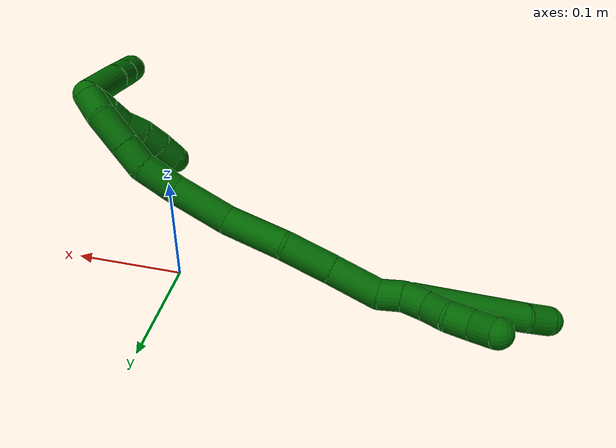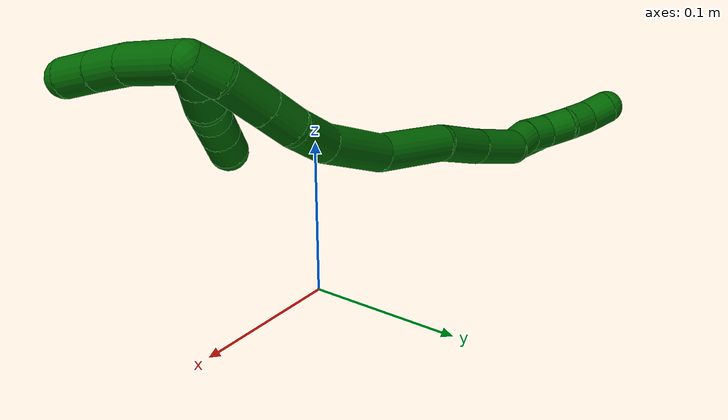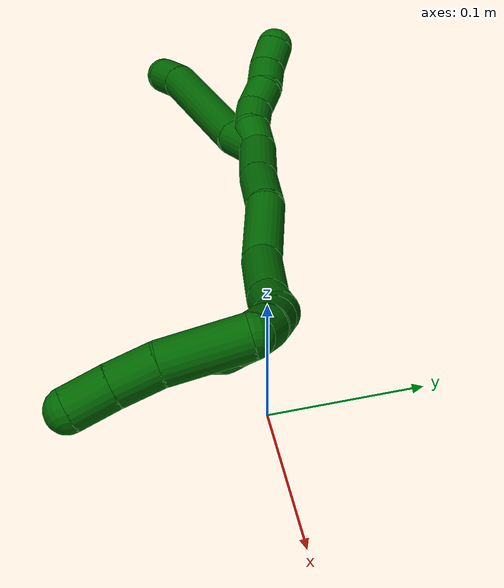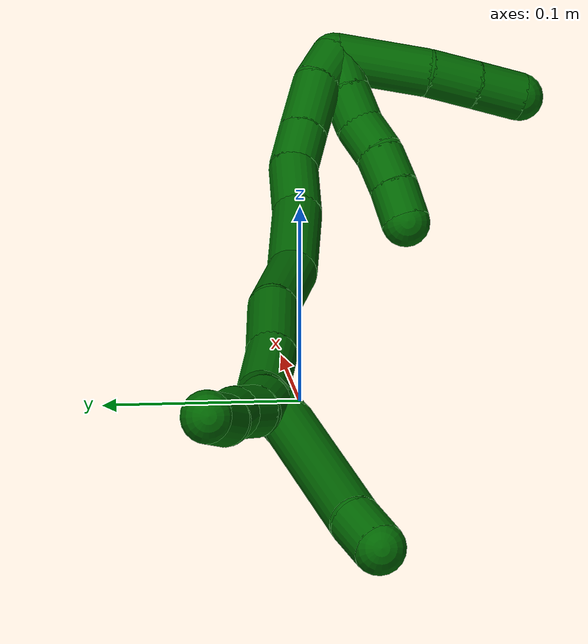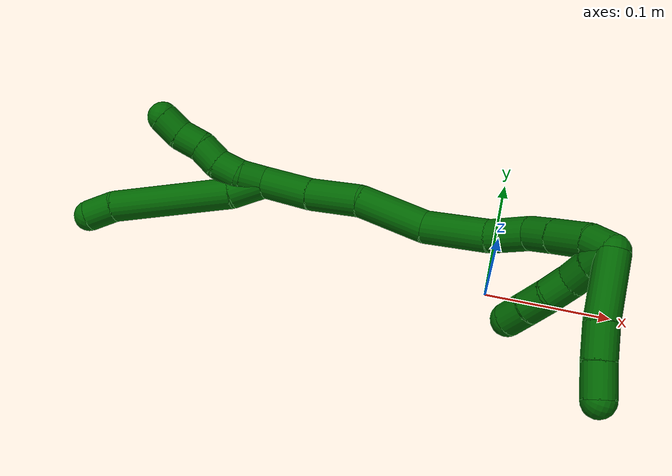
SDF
<sdf version="1.7">
 <world name="default">
  <model name="6">
   <static>0</static>
   <link name="6">
    <collision name="collision-cylinder-e_1_2_8">
     <pose>-0.002597 -0.00865 0.010975 0.667495 -0.183721 -0.063857</pose>
     <geometry><cylinder><radius>0.0125</radius><length>0.028427</length></cylinder></geometry>
     <surface>
      <friction><ode><mu>1.16</mu><mu2>1.16</mu2><slip1>0</slip1><slip2>0</slip2></ode></friction>
      <contact><ode><kp>1e+06</kp><kd>1</kd><max_vel>0</max_vel><min_depth>0.001</min_depth></ode></contact>
     </surface>
    </collision>
    <visual name="visual-cylinder-e_1_2_8">
     <pose>-0.002597 -0.00865 0.010975 0.667495 -0.183721 -0.063857</pose>
     <geometry><cylinder><radius>0.0125</radius><length>0.028427</length></cylinder></geometry>
     <material><ambient>0 0.392157 0.003922 1</ambient></material>
    </visual>
    <collision name="collision-cylinder-e_2_8_9">
     <pose>-0.017087 -0.038985 0.064564 0.470707 -0.243804 -0.058738</pose>
     <geometry><cylinder><radius>0.0125</radius><length>0.098542</length></cylinder></geometry>
     <surface>
      <friction><ode><mu>1.16</mu><mu2>1.16</mu2><slip1>0</slip1><slip2>0</slip2></ode></friction>
      <contact><ode><kp>1e+06</kp><kd>1</kd><max_vel>0</max_vel><min_depth>0.001</min_depth></ode></contact>
     </surface>
    </collision>
    <visual name="visual-cylinder-e_2_8_9">
     <pose>-0.017087 -0.038985 0.064564 0.470707 -0.243804 -0.058738</pose>
     <geometry><cylinder><radius>0.0125</radius><length>0.098542</length></cylinder></geometry>
     <material><ambient>0 0.392157 0.003922 1</ambient></material>
    </visual>
    <collision name="collision-cylinder-e_3_9_6">
     <pose>-0.031533 -0.067926 0.115748 0.702571 -0.223435 -0.082182</pose>
     <geometry><cylinder><radius>0.0125</radius><length>0.02303</length></cylinder></geometry>
     <surface>
      <friction><ode><mu>1.16</mu><mu2>1.16</mu2><slip1>0</slip1><slip2>0</slip2></ode></friction>
      <contact><ode><kp>1e+06</kp><kd>1</kd><max_vel>0</max_vel><min_depth>0.001</min_depth></ode></contact>
     </surface>
    </collision>
    <visual name="visual-cylinder-e_3_9_6">
     <pose>-0.031533 -0.067926 0.115748 0.702571 -0.223435 -0.082182</pose>
     <geometry><cylinder><radius>0.0125</radius><length>0.02303</length></cylinder></geometry>
     <material><ambient>0 0.392157 0.003922 1</ambient></material>
    </visual>
    <collision name="collision-cylinder-e_1_2_10">
     <pose>-0.000972 -0.000623 0.009933 0.062612 -0.097308 -0.00305</pose>
     <geometry><cylinder><radius>0.0125</radius><length>0.02</length></cylinder></geometry>
     <surface>
      <friction><ode><mu>1.16</mu><mu2>1.16</mu2><slip1>0</slip1><slip2>0</slip2></ode></friction>
      <contact><ode><kp>1e+06</kp><kd>1</kd><max_vel>0</max_vel><min_depth>0.001</min_depth></ode></contact>
     </surface>
    </collision>
    <visual name="visual-cylinder-e_1_2_10">
     <pose>-0.000972 -0.000623 0.009933 0.062612 -0.097308 -0.00305</pose>
     <geometry><cylinder><radius>0.0125</radius><length>0.02</length></cylinder></geometry>
     <material><ambient>0 0.392157 0.003922 1</ambient></material>
    </visual>
    <collision name="collision-cylinder-e_2_10_11">
     <pose>-0.005726 -0.000261 0.029071 -0.106609 -0.387998 0.020965</pose>
     <geometry><cylinder><radius>0.0125</radius><length>0.02</length></cylinder></geometry>
     <surface>
      <friction><ode><mu>1.16</mu><mu2>1.16</mu2><slip1>0</slip1><slip2>0</slip2></ode></friction>
      <contact><ode><kp>1e+06</kp><kd>1</kd><max_vel>0</max_vel><min_depth>0.001</min_depth></ode></contact>
     </surface>
    </collision>
    <visual name="visual-cylinder-e_2_10_11">
     <pose>-0.005726 -0.000261 0.029071 -0.106609 -0.387998 0.020965</pose>
     <geometry><cylinder><radius>0.0125</radius><length>0.02</length></cylinder></geometry>
     <material><ambient>0 0.392157 0.003922 1</ambient></material>
    </visual>
    <collision name="collision-cylinder-e_3_11_12">
     <pose>-0.012807 0.00493 0.046727 -0.461729 -0.335986 0.079685</pose>
     <geometry><cylinder><radius>0.0125</radius><length>0.02</length></cylinder></geometry>
     <surface>
      <friction><ode><mu>1.16</mu><mu2>1.16</mu2><slip1>0</slip1><slip2>0</slip2></ode></friction>
      <contact><ode><kp>1e+06</kp><kd>1</kd><max_vel>0</max_vel><min_depth>0.001</min_depth></ode></contact>
     </surface>
    </collision>
    <visual name="visual-cylinder-e_3_11_12">
     <pose>-0.012807 0.00493 0.046727 -0.461729 -0.335986 0.079685</pose>
     <geometry><cylinder><radius>0.0125</radius><length>0.02</length></cylinder></geometry>
     <material><ambient>0 0.392157 0.003922 1</ambient></material>
    </visual>
    <collision name="collision-cylinder-e_4_12_13">
     <pose>-0.019199 0.010578 0.064578 -0.152251 -0.31473 0.024204</pose>
     <geometry><cylinder><radius>0.0125</radius><length>0.02</length></cylinder></geometry>
     <surface>
      <friction><ode><mu>1.16</mu><mu2>1.16</mu2><slip1>0</slip1><slip2>0</slip2></ode></friction>
      <contact><ode><kp>1e+06</kp><kd>1</kd><max_vel>0</max_vel><min_depth>0.001</min_depth></ode></contact>
     </surface>
    </collision>
    <visual name="visual-cylinder-e_4_12_13">
     <pose>-0.019199 0.010578 0.064578 -0.152251 -0.31473 0.024204</pose>
     <geometry><cylinder><radius>0.0125</radius><length>0.02</length></cylinder></geometry>
     <material><ambient>0 0.392157 0.003922 1</ambient></material>
    </visual>
    <collision name="collision-cylinder-e_5_13_5">
     <pose>-0.024305 0.016265 0.082805 -0.448103 -0.202394 0.046271</pose>
     <geometry><cylinder><radius>0.0125</radius><length>0.02</length></cylinder></geometry>
     <surface>
      <friction><ode><mu>1.16</mu><mu2>1.16</mu2><slip1>0</slip1><slip2>0</slip2></ode></friction>
      <contact><ode><kp>1e+06</kp><kd>1</kd><max_vel>0</max_vel><min_depth>0.001</min_depth></ode></contact>
     </surface>
    </collision>
    <visual name="visual-cylinder-e_5_13_5">
     <pose>-0.024305 0.016265 0.082805 -0.448103 -0.202394 0.046271</pose>
     <geometry><cylinder><radius>0.0125</radius><length>0.02</length></cylinder></geometry>
     <material><ambient>0 0.392157 0.003922 1</ambient></material>
    </visual>
    <collision name="collision-cylinder-e_1_2_14">
     <pose>0.010527 0.00249 -0.018085 -3.00476 0.52306 -2.64034</pose>
     <geometry><cylinder><radius>0.0125</radius><length>0.042146</length></cylinder></geometry>
     <surface>
      <friction><ode><mu>1.16</mu><mu2>1.16</mu2><slip1>0</slip1><slip2>0</slip2></ode></friction>
      <contact><ode><kp>1e+06</kp><kd>1</kd><max_vel>0</max_vel><min_depth>0.001</min_depth></ode></contact>
     </surface>
    </collision>
    <visual name="visual-cylinder-e_1_2_14">
     <pose>0.010527 0.00249 -0.018085 -3.00476 0.52306 -2.64034</pose>
     <geometry><cylinder><radius>0.0125</radius><length>0.042146</length></cylinder></geometry>
     <material><ambient>0 0.392157 0.003922 1</ambient></material>
    </visual>
    <collision name="collision-cylinder-e_2_14_15">
     <pose>0.031649 0.009894 -0.053894 -2.87117 0.522623 -2.20042</pose>
     <geometry><cylinder><radius>0.0125</radius><length>0.042453</length></cylinder></geometry>
     <surface>
      <friction><ode><mu>1.16</mu><mu2>1.16</mu2><slip1>0</slip1><slip2>0</slip2></ode></friction>
      <contact><ode><kp>1e+06</kp><kd>1</kd><max_vel>0</max_vel><min_depth>0.001</min_depth></ode></contact>
     </surface>
    </collision>
    <visual name="visual-cylinder-e_2_14_15">
     <pose>0.031649 0.009894 -0.053894 -2.87117 0.522623 -2.20042</pose>
     <geometry><cylinder><radius>0.0125</radius><length>0.042453</length></cylinder></geometry>
     <material><ambient>0 0.392157 0.003922 1</ambient></material>
    </visual>
    <collision name="collision-cylinder-e_3_15_16">
     <pose>0.053674 0.014518 -0.096333 3.12991 0.433177 3.0885</pose>
     <geometry><cylinder><radius>0.0125</radius><length>0.054462</length></cylinder></geometry>
     <surface>
      <friction><ode><mu>1.16</mu><mu2>1.16</mu2><slip1>0</slip1><slip2>0</slip2></ode></friction>
      <contact><ode><kp>1e+06</kp><kd>1</kd><max_vel>0</max_vel><min_depth>0.001</min_depth></ode></contact>
     </surface>
    </collision>
    <visual name="visual-cylinder-e_3_15_16">
     <pose>0.053674 0.014518 -0.096333 3.12991 0.433177 3.0885</pose>
     <geometry><cylinder><radius>0.0125</radius><length>0.054462</length></cylinder></geometry>
     <material><ambient>0 0.392157 0.003922 1</ambient></material>
    </visual>
    <collision name="collision-cylinder-e_4_16_17">
     <pose>0.079541 0.020247 -0.141838 -2.85987 0.588227 -2.26591</pose>
     <geometry><cylinder><radius>0.0125</radius><length>0.052035</length></cylinder></geometry>
     <surface>
      <friction><ode><mu>1.16</mu><mu2>1.16</mu2><slip1>0</slip1><slip2>0</slip2></ode></friction>
      <contact><ode><kp>1e+06</kp><kd>1</kd><max_vel>0</max_vel><min_depth>0.001</min_depth></ode></contact>
     </surface>
    </collision>
    <visual name="visual-cylinder-e_4_16_17">
     <pose>0.079541 0.020247 -0.141838 -2.85987 0.588227 -2.26591</pose>
     <geometry><cylinder><radius>0.0125</radius><length>0.052035</length></cylinder></geometry>
     <material><ambient>0 0.392157 0.003922 1</ambient></material>
    </visual>
    <collision name="collision-cylinder-e_5_17_18">
     <pose>0.103984 0.032949 -0.173728 -2.59946 0.657635 -1.77456</pose>
     <geometry><cylinder><radius>0.0125</radius><length>0.03274</length></cylinder></geometry>
     <surface>
      <friction><ode><mu>1.16</mu><mu2>1.16</mu2><slip1>0</slip1><slip2>0</slip2></ode></friction>
      <contact><ode><kp>1e+06</kp><kd>1</kd><max_vel>0</max_vel><min_depth>0.001</min_depth></ode></contact>
     </surface>
    </collision>
    <visual name="visual-cylinder-e_5_17_18">
     <pose>0.103984 0.032949 -0.173728 -2.59946 0.657635 -1.77456</pose>
     <geometry><cylinder><radius>0.0125</radius><length>0.03274</length></cylinder></geometry>
     <material><ambient>0 0.392157 0.003922 1</ambient></material>
    </visual>
    <collision name="collision-cylinder-e_6_18_19">
     <pose>0.123327 0.042348 -0.190884 -2.72035 0.952719 -2.35599</pose>
     <geometry><cylinder><radius>0.0125</radius><length>0.022912</length></cylinder></geometry>
     <surface>
      <friction><ode><mu>1.16</mu><mu2>1.16</mu2><slip1>0</slip1><slip2>0</slip2></ode></friction>
      <contact><ode><kp>1e+06</kp><kd>1</kd><max_vel>0</max_vel><min_depth>0.001</min_depth></ode></contact>
     </surface>
    </collision>
    <visual name="visual-cylinder-e_6_18_19">
     <pose>0.123327 0.042348 -0.190884 -2.72035 0.952719 -2.35599</pose>
     <geometry><cylinder><radius>0.0125</radius><length>0.022912</length></cylinder></geometry>
     <material><ambient>0 0.392157 0.003922 1</ambient></material>
    </visual>
    <collision name="collision-cylinder-e_7_19_20">
     <pose>0.145774 0.048647 -0.205472 -2.74379 0.956222 -2.39967</pose>
     <geometry><cylinder><radius>0.0125</radius><length>0.032095</length></cylinder></geometry>
     <surface>
      <friction><ode><mu>1.16</mu><mu2>1.16</mu2><slip1>0</slip1><slip2>0</slip2></ode></friction>
      <contact><ode><kp>1e+06</kp><kd>1</kd><max_vel>0</max_vel><min_depth>0.001</min_depth></ode></contact>
     </surface>
    </collision>
    <visual name="visual-cylinder-e_7_19_20">
     <pose>0.145774 0.048647 -0.205472 -2.74379 0.956222 -2.39967</pose>
     <geometry><cylinder><radius>0.0125</radius><length>0.032095</length></cylinder></geometry>
     <material><ambient>0 0.392157 0.003922 1</ambient></material>
    </visual>
    <collision name="collision-cylinder-e_8_20_1">
     <pose>0.167821 0.052106 -0.219664 3.11929 1.00594 3.10105</pose>
     <geometry><cylinder><radius>0.0125</radius><length>0.021158</length></cylinder></geometry>
     <surface>
      <friction><ode><mu>1.16</mu><mu2>1.16</mu2><slip1>0</slip1><slip2>0</slip2></ode></friction>
      <contact><ode><kp>1e+06</kp><kd>1</kd><max_vel>0</max_vel><min_depth>0.001</min_depth></ode></contact>
     </surface>
    </collision>
    <visual name="visual-cylinder-e_8_20_1">
     <pose>0.167821 0.052106 -0.219664 3.11929 1.00594 3.10105</pose>
     <geometry><cylinder><radius>0.0125</radius><length>0.021158</length></cylinder></geometry>
     <material><ambient>0 0.392157 0.003922 1</ambient></material>
    </visual>
    <collision name="collision-cylinder-e_1_1_21">
     <pose>0.170616 0.04483 -0.221983 1.1334 -0.661226 -0.430032</pose>
     <geometry><cylinder><radius>0.0125</radius><length>0.02</length></cylinder></geometry>
     <surface>
      <friction><ode><mu>1.16</mu><mu2>1.16</mu2><slip1>0</slip1><slip2>0</slip2></ode></friction>
      <contact><ode><kp>1e+06</kp><kd>1</kd><max_vel>0</max_vel><min_depth>0.001</min_depth></ode></contact>
     </surface>
    </collision>
    <visual name="visual-cylinder-e_1_1_21">
     <pose>0.170616 0.04483 -0.221983 1.1334 -0.661226 -0.430032</pose>
     <geometry><cylinder><radius>0.0125</radius><length>0.02</length></cylinder></geometry>
     <material><ambient>0 0.392157 0.003922 1</ambient></material>
    </visual>
    <collision name="collision-cylinder-e_2_21_22">
     <pose>0.15882 0.029897 -0.215913 1.23382 -0.601038 -0.432721</pose>
     <geometry><cylinder><radius>0.0125</radius><length>0.02</length></cylinder></geometry>
     <surface>
      <friction><ode><mu>1.16</mu><mu2>1.16</mu2><slip1>0</slip1><slip2>0</slip2></ode></friction>
      <contact><ode><kp>1e+06</kp><kd>1</kd><max_vel>0</max_vel><min_depth>0.001</min_depth></ode></contact>
     </surface>
    </collision>
    <visual name="visual-cylinder-e_2_21_22">
     <pose>0.15882 0.029897 -0.215913 1.23382 -0.601038 -0.432721</pose>
     <geometry><cylinder><radius>0.0125</radius><length>0.02</length></cylinder></geometry>
     <material><ambient>0 0.392157 0.003922 1</ambient></material>
    </visual>
    <collision name="collision-cylinder-e_3_22_23">
     <pose>0.149512 0.014085 -0.208474 1.04003 -0.373994 -0.215832</pose>
     <geometry><cylinder><radius>0.0125</radius><length>0.02</length></cylinder></geometry>
     <surface>
      <friction><ode><mu>1.16</mu><mu2>1.16</mu2><slip1>0</slip1><slip2>0</slip2></ode></friction>
      <contact><ode><kp>1e+06</kp><kd>1</kd><max_vel>0</max_vel><min_depth>0.001</min_depth></ode></contact>
     </surface>
    </collision>
    <visual name="visual-cylinder-e_3_22_23">
     <pose>0.149512 0.014085 -0.208474 1.04003 -0.373994 -0.215832</pose>
     <geometry><cylinder><radius>0.0125</radius><length>0.02</length></cylinder></geometry>
     <material><ambient>0 0.392157 0.003922 1</ambient></material>
    </visual>
    <collision name="collision-cylinder-e_4_23_24">
     <pose>0.140455 -0.001356 -0.19978 1.07791 -0.570858 -0.347423</pose>
     <geometry><cylinder><radius>0.0125</radius><length>0.02</length></cylinder></geometry>
     <surface>
      <friction><ode><mu>1.16</mu><mu2>1.16</mu2><slip1>0</slip1><slip2>0</slip2></ode></friction>
      <contact><ode><kp>1e+06</kp><kd>1</kd><max_vel>0</max_vel><min_depth>0.001</min_depth></ode></contact>
     </surface>
    </collision>
    <visual name="visual-cylinder-e_4_23_24">
     <pose>0.140455 -0.001356 -0.19978 1.07791 -0.570858 -0.347423</pose>
     <geometry><cylinder><radius>0.0125</radius><length>0.02</length></cylinder></geometry>
     <material><ambient>0 0.392157 0.003922 1</ambient></material>
    </visual>
    <collision name="collision-cylinder-e_5_24_4">
     <pose>0.129048 -0.015898 -0.192175 1.1006 -0.643904 -0.403714</pose>
     <geometry><cylinder><radius>0.0125</radius><length>0.02</length></cylinder></geometry>
     <surface>
      <friction><ode><mu>1.16</mu><mu2>1.16</mu2><slip1>0</slip1><slip2>0</slip2></ode></friction>
      <contact><ode><kp>1e+06</kp><kd>1</kd><max_vel>0</max_vel><min_depth>0.001</min_depth></ode></contact>
     </surface>
    </collision>
    <visual name="visual-cylinder-e_5_24_4">
     <pose>0.129048 -0.015898 -0.192175 1.1006 -0.643904 -0.403714</pose>
     <geometry><cylinder><radius>0.0125</radius><length>0.02</length></cylinder></geometry>
     <material><ambient>0 0.392157 0.003922 1</ambient></material>
    </visual>
    <collision name="collision-cylinder-e_1_1_25">
     <pose>0.186814 0.029774 -0.226788 1.63654 0.42446 0.452382</pose>
     <geometry><cylinder><radius>0.0125</radius><length>0.04884</length></cylinder></geometry>
     <surface>
      <friction><ode><mu>1.16</mu><mu2>1.16</mu2><slip1>0</slip1><slip2>0</slip2></ode></friction>
      <contact><ode><kp>1e+06</kp><kd>1</kd><max_vel>0</max_vel><min_depth>0.001</min_depth></ode></contact>
     </surface>
    </collision>
    <visual name="visual-cylinder-e_1_1_25">
     <pose>0.186814 0.029774 -0.226788 1.63654 0.42446 0.452382</pose>
     <geometry><cylinder><radius>0.0125</radius><length>0.04884</length></cylinder></geometry>
     <material><ambient>0 0.392157 0.003922 1</ambient></material>
    </visual>
    <collision name="collision-cylinder-e_2_25_26">
     <pose>0.201308 -0.004354 -0.230644 1.76895 0.349837 0.424958</pose>
     <geometry><cylinder><radius>0.0125</radius><length>0.025891</length></cylinder></geometry>
     <surface>
      <friction><ode><mu>1.16</mu><mu2>1.16</mu2><slip1>0</slip1><slip2>0</slip2></ode></friction>
      <contact><ode><kp>1e+06</kp><kd>1</kd><max_vel>0</max_vel><min_depth>0.001</min_depth></ode></contact>
     </surface>
    </collision>
    <visual name="visual-cylinder-e_2_25_26">
     <pose>0.201308 -0.004354 -0.230644 1.76895 0.349837 0.424958</pose>
     <geometry><cylinder><radius>0.0125</radius><length>0.025891</length></cylinder></geometry>
     <material><ambient>0 0.392157 0.003922 1</ambient></material>
    </visual>
    <collision name="collision-cylinder-e_3_26_3">
     <pose>0.210019 -0.027763 -0.236111 1.83225 0.345131 0.446565</pose>
     <geometry><cylinder><radius>0.0125</radius><length>0.025268</length></cylinder></geometry>
     <surface>
      <friction><ode><mu>1.16</mu><mu2>1.16</mu2><slip1>0</slip1><slip2>0</slip2></ode></friction>
      <contact><ode><kp>1e+06</kp><kd>1</kd><max_vel>0</max_vel><min_depth>0.001</min_depth></ode></contact>
     </surface>
    </collision>
    <visual name="visual-cylinder-e_3_26_3">
     <pose>0.210019 -0.027763 -0.236111 1.83225 0.345131 0.446565</pose>
     <geometry><cylinder><radius>0.0125</radius><length>0.025268</length></cylinder></geometry>
     <material><ambient>0 0.392157 0.003922 1</ambient></material>
    </visual>
    <collision name="collision-sphere-3">
     <pose>0.214293 -0.039248 -0.239184 0 -0 0</pose>
     <geometry><sphere><radius>0.0125</radius></sphere></geometry>
     <surface>
      <friction><ode><mu>1.16</mu><mu2>1.16</mu2><slip1>0</slip1><slip2>0</slip2></ode></friction>
      <contact><ode><kp>1e+06</kp><kd>1</kd><max_vel>0</max_vel><min_depth>0.001</min_depth></ode></contact>
     </surface>
    </collision>
    <visual name="visual-sphere-3">
     <pose>0.214293 -0.039248 -0.239184 0 -0 0</pose>
     <geometry><sphere><radius>0.0125</radius></sphere></geometry>
     <material><ambient>0 0.392157 0.003922 1</ambient></material>
    </visual>
    <collision name="collision-sphere-26">
     <pose>0.205745 -0.016278 -0.233038 0 -0 0</pose>
     <geometry><sphere><radius>0.0125</radius></sphere></geometry>
     <surface>
      <friction><ode><mu>1.16</mu><mu2>1.16</mu2><slip1>0</slip1><slip2>0</slip2></ode></friction>
      <contact><ode><kp>1e+06</kp><kd>1</kd><max_vel>0</max_vel><min_depth>0.001</min_depth></ode></contact>
     </surface>
    </collision>
    <visual name="visual-sphere-26">
     <pose>0.205745 -0.016278 -0.233038 0 -0 0</pose>
     <geometry><sphere><radius>0.0125</radius></sphere></geometry>
     <material><ambient>0 0.392157 0.003922 1</ambient></material>
    </visual>
    <collision name="collision-sphere-25">
     <pose>0.19687 0.007569 -0.22825 0 -0 0</pose>
     <geometry><sphere><radius>0.0125</radius></sphere></geometry>
     <surface>
      <friction><ode><mu>1.16</mu><mu2>1.16</mu2><slip1>0</slip1><slip2>0</slip2></ode></friction>
      <contact><ode><kp>1e+06</kp><kd>1</kd><max_vel>0</max_vel><min_depth>0.001</min_depth></ode></contact>
     </surface>
    </collision>
    <visual name="visual-sphere-25">
     <pose>0.19687 0.007569 -0.22825 0 -0 0</pose>
     <geometry><sphere><radius>0.0125</radius></sphere></geometry>
     <material><ambient>0 0.392157 0.003922 1</ambient></material>
    </visual>
    <collision name="collision-sphere-4">
     <pose>0.123045 -0.023028 -0.188552 0 -0 0</pose>
     <geometry><sphere><radius>0.0125</radius></sphere></geometry>
     <surface>
      <friction><ode><mu>1.16</mu><mu2>1.16</mu2><slip1>0</slip1><slip2>0</slip2></ode></friction>
      <contact><ode><kp>1e+06</kp><kd>1</kd><max_vel>0</max_vel><min_depth>0.001</min_depth></ode></contact>
     </surface>
    </collision>
    <visual name="visual-sphere-4">
     <pose>0.123045 -0.023028 -0.188552 0 -0 0</pose>
     <geometry><sphere><radius>0.0125</radius></sphere></geometry>
     <material><ambient>0 0.392157 0.003922 1</ambient></material>
    </visual>
    <collision name="collision-sphere-24">
     <pose>0.135051 -0.008768 -0.195799 0 -0 0</pose>
     <geometry><sphere><radius>0.0125</radius></sphere></geometry>
     <surface>
      <friction><ode><mu>1.16</mu><mu2>1.16</mu2><slip1>0</slip1><slip2>0</slip2></ode></friction>
      <contact><ode><kp>1e+06</kp><kd>1</kd><max_vel>0</max_vel><min_depth>0.001</min_depth></ode></contact>
     </surface>
    </collision>
    <visual name="visual-sphere-24">
     <pose>0.135051 -0.008768 -0.195799 0 -0 0</pose>
     <geometry><sphere><radius>0.0125</radius></sphere></geometry>
     <material><ambient>0 0.392157 0.003922 1</ambient></material>
    </visual>
    <collision name="collision-sphere-23">
     <pose>0.145858 0.006057 -0.203762 0 -0 0</pose>
     <geometry><sphere><radius>0.0125</radius></sphere></geometry>
     <surface>
      <friction><ode><mu>1.16</mu><mu2>1.16</mu2><slip1>0</slip1><slip2>0</slip2></ode></friction>
      <contact><ode><kp>1e+06</kp><kd>1</kd><max_vel>0</max_vel><min_depth>0.001</min_depth></ode></contact>
     </surface>
    </collision>
    <visual name="visual-sphere-23">
     <pose>0.145858 0.006057 -0.203762 0 -0 0</pose>
     <geometry><sphere><radius>0.0125</radius></sphere></geometry>
     <material><ambient>0 0.392157 0.003922 1</ambient></material>
    </visual>
    <collision name="collision-sphere-22">
     <pose>0.153165 0.022113 -0.213186 0 -0 0</pose>
     <geometry><sphere><radius>0.0125</radius></sphere></geometry>
     <surface>
      <friction><ode><mu>1.16</mu><mu2>1.16</mu2><slip1>0</slip1><slip2>0</slip2></ode></friction>
      <contact><ode><kp>1e+06</kp><kd>1</kd><max_vel>0</max_vel><min_depth>0.001</min_depth></ode></contact>
     </surface>
    </collision>
    <visual name="visual-sphere-22">
     <pose>0.153165 0.022113 -0.213186 0 -0 0</pose>
     <geometry><sphere><radius>0.0125</radius></sphere></geometry>
     <material><ambient>0 0.392157 0.003922 1</ambient></material>
    </visual>
    <collision name="collision-sphere-21">
     <pose>0.164475 0.037681 -0.21864 0 -0 0</pose>
     <geometry><sphere><radius>0.0125</radius></sphere></geometry>
     <surface>
      <friction><ode><mu>1.16</mu><mu2>1.16</mu2><slip1>0</slip1><slip2>0</slip2></ode></friction>
      <contact><ode><kp>1e+06</kp><kd>1</kd><max_vel>0</max_vel><min_depth>0.001</min_depth></ode></contact>
     </surface>
    </collision>
    <visual name="visual-sphere-21">
     <pose>0.164475 0.037681 -0.21864 0 -0 0</pose>
     <geometry><sphere><radius>0.0125</radius></sphere></geometry>
     <material><ambient>0 0.392157 0.003922 1</ambient></material>
    </visual>
    <collision name="collision-sphere-1">
     <pose>0.176757 0.051979 -0.225326 0 -0 0</pose>
     <geometry><sphere><radius>0.0125</radius></sphere></geometry>
     <surface>
      <friction><ode><mu>1.16</mu><mu2>1.16</mu2><slip1>0</slip1><slip2>0</slip2></ode></friction>
      <contact><ode><kp>1e+06</kp><kd>1</kd><max_vel>0</max_vel><min_depth>0.001</min_depth></ode></contact>
     </surface>
    </collision>
    <visual name="visual-sphere-1">
     <pose>0.176757 0.051979 -0.225326 0 -0 0</pose>
     <geometry><sphere><radius>0.0125</radius></sphere></geometry>
     <material><ambient>0 0.392157 0.003922 1</ambient></material>
    </visual>
    <collision name="collision-sphere-11">
     <pose>-0.00951 0.000724 0.038275 0 -0 0</pose>
     <geometry><sphere><radius>0.0125</radius></sphere></geometry>
     <surface>
      <friction><ode><mu>1.16</mu><mu2>1.16</mu2><slip1>0</slip1><slip2>0</slip2></ode></friction>
      <contact><ode><kp>1e+06</kp><kd>1</kd><max_vel>0</max_vel><min_depth>0.001</min_depth></ode></contact>
     </surface>
    </collision>
    <visual name="visual-sphere-11">
     <pose>-0.00951 0.000724 0.038275 0 -0 0</pose>
     <geometry><sphere><radius>0.0125</radius></sphere></geometry>
     <material><ambient>0 0.392157 0.003922 1</ambient></material>
    </visual>
    <collision name="collision-sphere-10">
     <pose>-0.001943 -0.001246 0.019866 0 -0 0</pose>
     <geometry><sphere><radius>0.0125</radius></sphere></geometry>
     <surface>
      <friction><ode><mu>1.16</mu><mu2>1.16</mu2><slip1>0</slip1><slip2>0</slip2></ode></friction>
      <contact><ode><kp>1e+06</kp><kd>1</kd><max_vel>0</max_vel><min_depth>0.001</min_depth></ode></contact>
     </surface>
    </collision>
    <visual name="visual-sphere-10">
     <pose>-0.001943 -0.001246 0.019866 0 -0 0</pose>
     <geometry><sphere><radius>0.0125</radius></sphere></geometry>
     <material><ambient>0 0.392157 0.003922 1</ambient></material>
    </visual>
    <collision name="collision-sphere-6">
     <pose>-0.034084 -0.075182 0.124318 0 -0 0</pose>
     <geometry><sphere><radius>0.0125</radius></sphere></geometry>
     <surface>
      <friction><ode><mu>1.16</mu><mu2>1.16</mu2><slip1>0</slip1><slip2>0</slip2></ode></friction>
      <contact><ode><kp>1e+06</kp><kd>1</kd><max_vel>0</max_vel><min_depth>0.001</min_depth></ode></contact>
     </surface>
    </collision>
    <visual name="visual-sphere-6">
     <pose>-0.034084 -0.075182 0.124318 0 -0 0</pose>
     <geometry><sphere><radius>0.0125</radius></sphere></geometry>
     <material><ambient>0 0.392157 0.003922 1</ambient></material>
    </visual>
    <collision name="collision-sphere-9">
     <pose>-0.028981 -0.06067 0.107179 0 -0 0</pose>
     <geometry><sphere><radius>0.0125</radius></sphere></geometry>
     <surface>
      <friction><ode><mu>1.16</mu><mu2>1.16</mu2><slip1>0</slip1><slip2>0</slip2></ode></friction>
      <contact><ode><kp>1e+06</kp><kd>1</kd><max_vel>0</max_vel><min_depth>0.001</min_depth></ode></contact>
     </surface>
    </collision>
    <visual name="visual-sphere-9">
     <pose>-0.028981 -0.06067 0.107179 0 -0 0</pose>
     <geometry><sphere><radius>0.0125</radius></sphere></geometry>
     <material><ambient>0 0.392157 0.003922 1</ambient></material>
    </visual>
    <collision name="collision-sphere-2">
     <geometry><sphere><radius>0.0125</radius></sphere></geometry>
     <surface>
      <friction><ode><mu>1.16</mu><mu2>1.16</mu2><slip1>0</slip1><slip2>0</slip2></ode></friction>
      <contact><ode><kp>1e+06</kp><kd>1</kd><max_vel>0</max_vel><min_depth>0.001</min_depth></ode></contact>
     </surface>
    </collision>
    <visual name="visual-sphere-2">
     <geometry><sphere><radius>0.0125</radius></sphere></geometry>
     <material><ambient>0 0.392157 0.003922 1</ambient></material>
    </visual>
    <collision name="collision-sphere-19">
     <pose>0.132663 0.045063 -0.196942 0 -0 0</pose>
     <geometry><sphere><radius>0.0125</radius></sphere></geometry>
     <surface>
      <friction><ode><mu>1.16</mu><mu2>1.16</mu2><slip1>0</slip1><slip2>0</slip2></ode></friction>
      <contact><ode><kp>1e+06</kp><kd>1</kd><max_vel>0</max_vel><min_depth>0.001</min_depth></ode></contact>
     </surface>
    </collision>
    <visual name="visual-sphere-19">
     <pose>0.132663 0.045063 -0.196942 0 -0 0</pose>
     <geometry><sphere><radius>0.0125</radius></sphere></geometry>
     <material><ambient>0 0.392157 0.003922 1</ambient></material>
    </visual>
    <collision name="collision-sphere-8">
     <pose>-0.005193 -0.017301 0.02195 0 -0 0</pose>
     <geometry><sphere><radius>0.0125</radius></sphere></geometry>
     <surface>
      <friction><ode><mu>1.16</mu><mu2>1.16</mu2><slip1>0</slip1><slip2>0</slip2></ode></friction>
      <contact><ode><kp>1e+06</kp><kd>1</kd><max_vel>0</max_vel><min_depth>0.001</min_depth></ode></contact>
     </surface>
    </collision>
    <visual name="visual-sphere-8">
     <pose>-0.005193 -0.017301 0.02195 0 -0 0</pose>
     <geometry><sphere><radius>0.0125</radius></sphere></geometry>
     <material><ambient>0 0.392157 0.003922 1</ambient></material>
    </visual>
    <collision name="collision-sphere-12">
     <pose>-0.016104 0.009136 0.055179 0 -0 0</pose>
     <geometry><sphere><radius>0.0125</radius></sphere></geometry>
     <surface>
      <friction><ode><mu>1.16</mu><mu2>1.16</mu2><slip1>0</slip1><slip2>0</slip2></ode></friction>
      <contact><ode><kp>1e+06</kp><kd>1</kd><max_vel>0</max_vel><min_depth>0.001</min_depth></ode></contact>
     </surface>
    </collision>
    <visual name="visual-sphere-12">
     <pose>-0.016104 0.009136 0.055179 0 -0 0</pose>
     <geometry><sphere><radius>0.0125</radius></sphere></geometry>
     <material><ambient>0 0.392157 0.003922 1</ambient></material>
    </visual>
    <collision name="collision-sphere-13">
     <pose>-0.022295 0.01202 0.073977 0 -0 0</pose>
     <geometry><sphere><radius>0.0125</radius></sphere></geometry>
     <surface>
      <friction><ode><mu>1.16</mu><mu2>1.16</mu2><slip1>0</slip1><slip2>0</slip2></ode></friction>
      <contact><ode><kp>1e+06</kp><kd>1</kd><max_vel>0</max_vel><min_depth>0.001</min_depth></ode></contact>
     </surface>
    </collision>
    <visual name="visual-sphere-13">
     <pose>-0.022295 0.01202 0.073977 0 -0 0</pose>
     <geometry><sphere><radius>0.0125</radius></sphere></geometry>
     <material><ambient>0 0.392157 0.003922 1</ambient></material>
    </visual>
    <collision name="collision-sphere-5">
     <pose>-0.026315 0.020509 0.091634 0 -0 0</pose>
     <geometry><sphere><radius>0.0125</radius></sphere></geometry>
     <surface>
      <friction><ode><mu>1.16</mu><mu2>1.16</mu2><slip1>0</slip1><slip2>0</slip2></ode></friction>
      <contact><ode><kp>1e+06</kp><kd>1</kd><max_vel>0</max_vel><min_depth>0.001</min_depth></ode></contact>
     </surface>
    </collision>
    <visual name="visual-sphere-5">
     <pose>-0.026315 0.020509 0.091634 0 -0 0</pose>
     <geometry><sphere><radius>0.0125</radius></sphere></geometry>
     <material><ambient>0 0.392157 0.003922 1</ambient></material>
    </visual>
    <collision name="collision-sphere-14">
     <pose>0.021053 0.00498 -0.03617 0 -0 0</pose>
     <geometry><sphere><radius>0.0125</radius></sphere></geometry>
     <surface>
      <friction><ode><mu>1.16</mu><mu2>1.16</mu2><slip1>0</slip1><slip2>0</slip2></ode></friction>
      <contact><ode><kp>1e+06</kp><kd>1</kd><max_vel>0</max_vel><min_depth>0.001</min_depth></ode></contact>
     </surface>
    </collision>
    <visual name="visual-sphere-14">
     <pose>0.021053 0.00498 -0.03617 0 -0 0</pose>
     <geometry><sphere><radius>0.0125</radius></sphere></geometry>
     <material><ambient>0 0.392157 0.003922 1</ambient></material>
    </visual>
    <collision name="collision-sphere-15">
     <pose>0.042244 0.014807 -0.071619 0 -0 0</pose>
     <geometry><sphere><radius>0.0125</radius></sphere></geometry>
     <surface>
      <friction><ode><mu>1.16</mu><mu2>1.16</mu2><slip1>0</slip1><slip2>0</slip2></ode></friction>
      <contact><ode><kp>1e+06</kp><kd>1</kd><max_vel>0</max_vel><min_depth>0.001</min_depth></ode></contact>
     </surface>
    </collision>
    <visual name="visual-sphere-15">
     <pose>0.042244 0.014807 -0.071619 0 -0 0</pose>
     <geometry><sphere><radius>0.0125</radius></sphere></geometry>
     <material><ambient>0 0.392157 0.003922 1</ambient></material>
    </visual>
    <collision name="collision-sphere-16">
     <pose>0.065105 0.01423 -0.121047 0 -0 0</pose>
     <geometry><sphere><radius>0.0125</radius></sphere></geometry>
     <surface>
      <friction><ode><mu>1.16</mu><mu2>1.16</mu2><slip1>0</slip1><slip2>0</slip2></ode></friction>
      <contact><ode><kp>1e+06</kp><kd>1</kd><max_vel>0</max_vel><min_depth>0.001</min_depth></ode></contact>
     </surface>
    </collision>
    <visual name="visual-sphere-16">
     <pose>0.065105 0.01423 -0.121047 0 -0 0</pose>
     <geometry><sphere><radius>0.0125</radius></sphere></geometry>
     <material><ambient>0 0.392157 0.003922 1</ambient></material>
    </visual>
    <collision name="collision-sphere-17">
     <pose>0.093978 0.026264 -0.162629 0 -0 0</pose>
     <geometry><sphere><radius>0.0125</radius></sphere></geometry>
     <surface>
      <friction><ode><mu>1.16</mu><mu2>1.16</mu2><slip1>0</slip1><slip2>0</slip2></ode></friction>
      <contact><ode><kp>1e+06</kp><kd>1</kd><max_vel>0</max_vel><min_depth>0.001</min_depth></ode></contact>
     </surface>
    </collision>
    <visual name="visual-sphere-17">
     <pose>0.093978 0.026264 -0.162629 0 -0 0</pose>
     <geometry><sphere><radius>0.0125</radius></sphere></geometry>
     <material><ambient>0 0.392157 0.003922 1</ambient></material>
    </visual>
    <collision name="collision-sphere-18">
     <pose>0.11399 0.039634 -0.184826 0 -0 0</pose>
     <geometry><sphere><radius>0.0125</radius></sphere></geometry>
     <surface>
      <friction><ode><mu>1.16</mu><mu2>1.16</mu2><slip1>0</slip1><slip2>0</slip2></ode></friction>
      <contact><ode><kp>1e+06</kp><kd>1</kd><max_vel>0</max_vel><min_depth>0.001</min_depth></ode></contact>
     </surface>
    </collision>
    <visual name="visual-sphere-18">
     <pose>0.11399 0.039634 -0.184826 0 -0 0</pose>
     <geometry><sphere><radius>0.0125</radius></sphere></geometry>
     <material><ambient>0 0.392157 0.003922 1</ambient></material>
    </visual>
    <collision name="collision-sphere-20">
     <pose>0.158885 0.052232 -0.214003 0 -0 0</pose>
     <geometry><sphere><radius>0.0125</radius></sphere></geometry>
     <surface>
      <friction><ode><mu>1.16</mu><mu2>1.16</mu2><slip1>0</slip1><slip2>0</slip2></ode></friction>
      <contact><ode><kp>1e+06</kp><kd>1</kd><max_vel>0</max_vel><min_depth>0.001</min_depth></ode></contact>
     </surface>
    </collision>
    <visual name="visual-sphere-20">
     <pose>0.158885 0.052232 -0.214003 0 -0 0</pose>
     <geometry><sphere><radius>0.0125</radius></sphere></geometry>
     <material><ambient>0 0.392157 0.003922 1</ambient></material>
    </visual>
    <inertial>
     <pose>0.072236 0.005492 -0.089012 0 -0 0</pose>
     <mass>0.75</mass>
     <inertia><ixx>6.1e-05</ixx><ixy>0</ixy><ixz>0</ixz><iyy>0.000102</iyy><iyz>0</iyz><izz>4.1e-05</izz></inertia>
    </inertial>
   </link>
   <pose>-0.186187 0.036572 0.048999 1.1465 -0.922281 -1.24063</pose>
  </model>
 </world>
</sdf>
